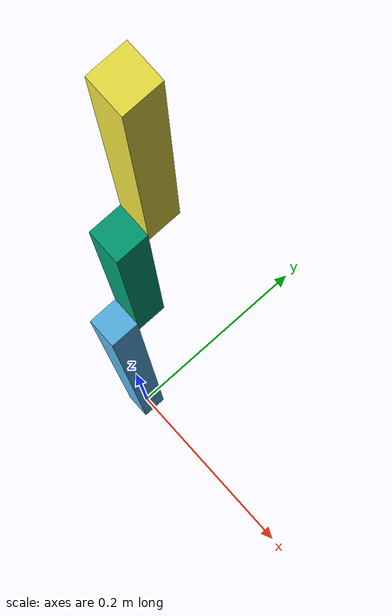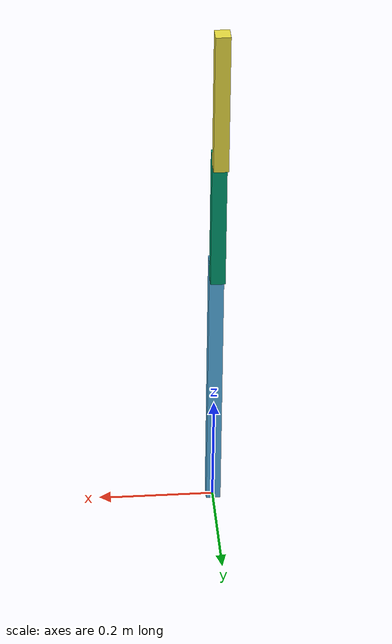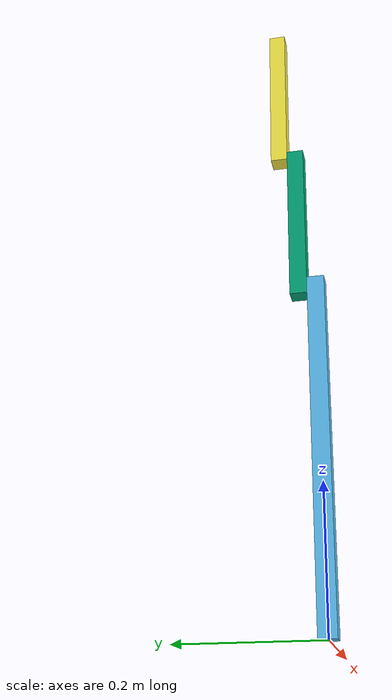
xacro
<?xml version="1.0"?>
<robot xmlns:xacro="http://www.ros.org/wiki/xacro" name="rrbot">

  <xacro:include filename="$(find mini_control)/description/urdf/rrbot_macro.urdf.xacro" />

  <!--Here I changed "world" to iiwa_tool0, the last link from my KUKA-->
  <!--link name="world"-->
  <link name="world"/>

  <xacro:rrbot parent="world" prefix="">
    <origin xyz="0 0 0" rpy="0 0 0"/>
  </xacro:rrbot>

  <ros2_control name="GazeboSystem" type="system">
    <hardware>
      <plugin>gazebo_ros2_control/GazeboSystem</plugin>
    </hardware>

    <joint name="joint1">
      <command_interface name="effort"/>
      <state_interface name="position"/>
      <state_interface name="velocity"/>
      <state_interface name="effort"/>
    </joint>

    <joint name="joint2">
      <command_interface name="effort"/>
      <state_interface name="position"/>
      <state_interface name="velocity"/>
      <state_interface name="effort"/>
    </joint>

  </ros2_control>

</robot>

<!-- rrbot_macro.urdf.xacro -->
<robot xmlns:xacro="http://www.ros.org/wiki/xacro">

  <xacro:macro name="rrbot" params="parent prefix *origin">

  <joint name="${prefix}base_joint" type="fixed">
    <xacro:insert_block name="origin" />
    <parent link="${parent}"/>
    <child link="${prefix}base_link" />
  </joint>

  <!-- Base Link -->
  <link name="${prefix}base_link">
    <collision>
      <origin xyz="0.0 0.0 0.25" rpy="0 0 0"/>
      <geometry>
        <box size="0.025 0.025 0.5"/>
      </geometry>
    </collision>

    <visual>
      <origin xyz="0.0 0.0 0.25" rpy="0 0 0"/>
      <geometry>
        <box size="0.025 0.025 0.5"/>
      </geometry>
    </visual>

      <inertial>
        <origin xyz="0.0 0.0 0.0" rpy="0 0 0"/>
        <mass value="0.5"/>
        <inertia ixx="0.001" ixy="0.0" ixz="0.0" iyy="0.001" iyz="0.0" izz="0.001"/>
      </inertial>

  </link>

  <joint name="${prefix}joint1" type="revolute">
    <parent link="${prefix}base_link"/>
    <child link="${prefix}link1"/>
    <origin xyz="0.0 0.025 0.4875" rpy="0 0 0"/>
    <axis xyz="0 1 0"/>
    <dynamics damping="0.8"/>
    <limit effort="100" lower="-6" upper="6" velocity="1" />
  </joint>

  <!-- Middle Link -->
  <link name="${prefix}link1">
    <collision>
      <origin xyz="0.0 0.0 0.1125" rpy="0 0 0"/>
      <geometry>
        <box size="0.025 0.025 0.25"/>
      </geometry>
    </collision>

    <visual>
      <origin xyz="0.0 0.0 0.1125" rpy="0 0 0"/>
      <geometry>
        <box size="0.025 0.025 0.25"/>
      </geometry>
    </visual>

      <inertial>
        <origin xyz="0.0 0.0 0.0" rpy="0 0 0"/>
        <mass value="0.5"/>
        <inertia ixx="0.001" ixy="0.0" ixz="0.0" iyy="0.001" iyz="0.0" izz="0.001"/>
      </inertial>

  </link>

  <joint name="${prefix}joint2" type="revolute">
    <parent link="${prefix}link1"/>
    <child link="${prefix}link2"/>
    <origin xyz="0.0 0.025 0.2375" rpy="0 0 0"/>
    <axis xyz="0 1 0"/>
    <dynamics damping="0.8"/>
    <limit effort="100" lower="-6" upper="6" velocity="1" />
  </joint>

  <!-- Top Link -->
  <link name="${prefix}link2">
    <collision>
      <origin xyz="0.0 0.0 0.1125" rpy="0 0 0"/>
      <geometry>
        <box size="0.025 0.025 0.25"/>
      </geometry>
    </collision>

    <visual>
      <origin xyz="0.0 0.0 0.1125" rpy="0 0 0"/>
      <geometry>
        <box size="0.025 0.025 0.25"/>
      </geometry>
    </visual>

      <inertial>
        <origin xyz="0.0 0.0 0.0" rpy="0 0 0"/>
        <mass value="0.5"/>
        <inertia ixx="0.001" ixy="0.0" ixz="0.0" iyy="0.001" iyz="0.0" izz="0.001"/>
      </inertial>

  </link>

  </xacro:macro>

</robot>
